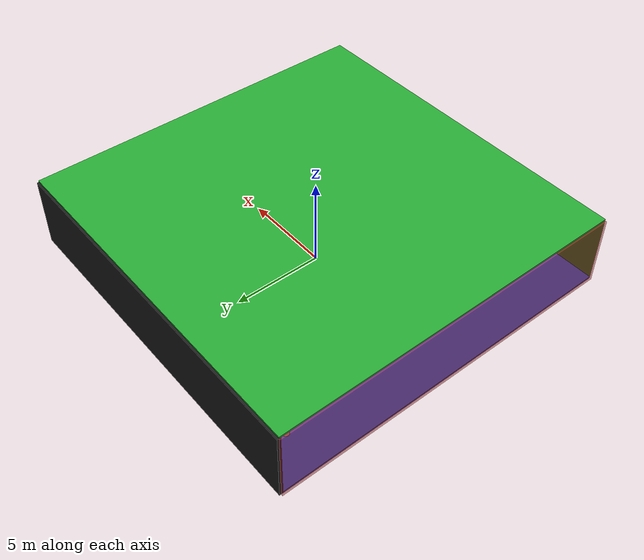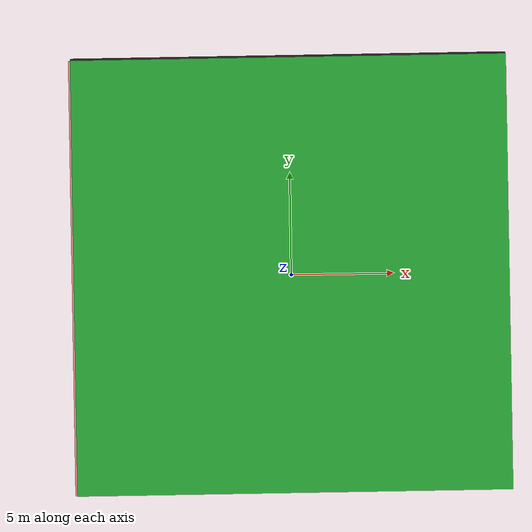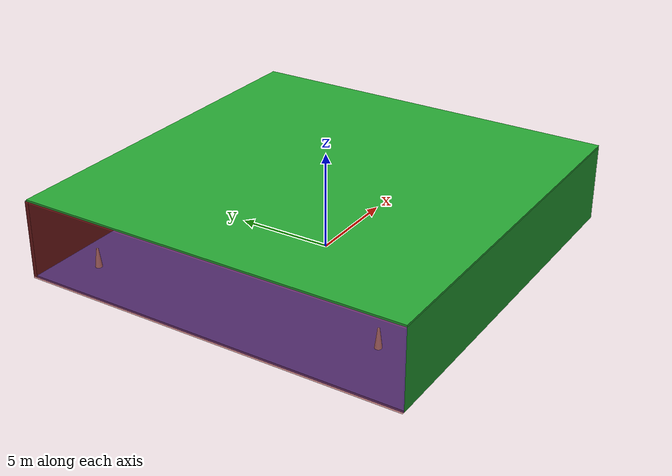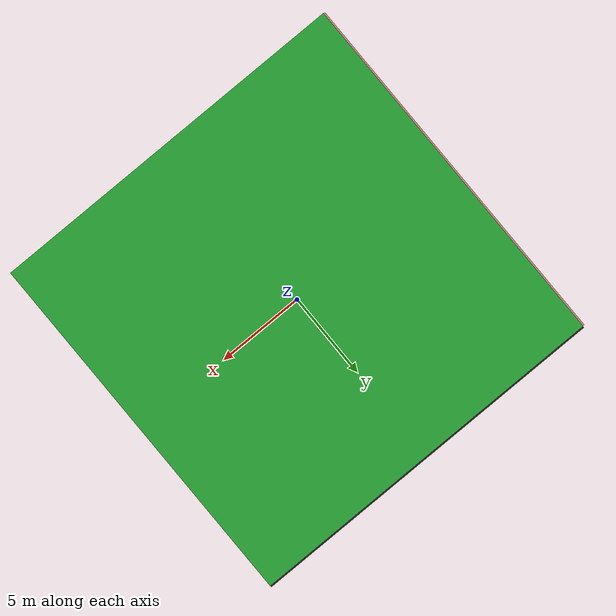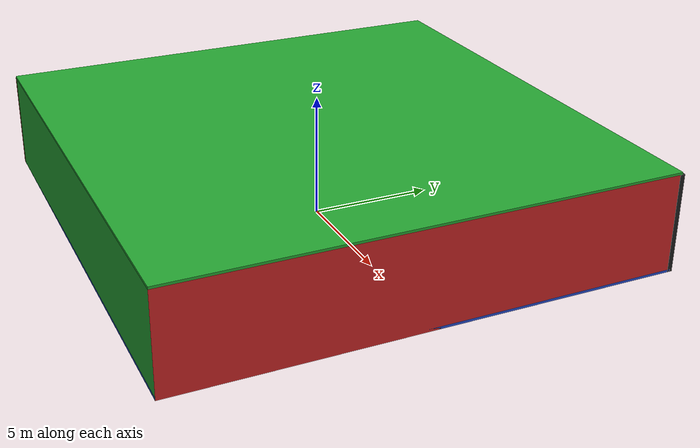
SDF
<sdf version="1.4">
 <world name="default">
  <physics type="ode">
   <max_step_size>0.001</max_step_size>
   <real_time_factor>1</real_time_factor>
   <real_time_update_rate>1000</real_time_update_rate>
   <gravity>0 0 -9.8</gravity>
  </physics>
  <scene><ambient>0.4 0.4 0.4 1</ambient><background>0.7 0.7 0.7 1</background><shadows>1</shadows></scene>
  <model name="Surrounding">
   <static>1</static>
   <link name="Ceiling">
    <collision name="Ceiling_Collision"><geometry><box><size>20 20 0.1</size></box></geometry></collision>
    <visual name="Ceiling_Visual">
     <geometry><box><size>20 20 0.1</size></box></geometry>
     <material>
      <script><uri>file://media/materials/scripts/gazebo.material</uri><name>Gazebo/GreenGlow</name></script>
     </material>
    </visual>
    <pose>0 0 4.05 0 0 0</pose>
   </link>
   <link name="Wall_South">
    <collision name="Wall_South_Collision">
     <geometry><box><size>20 0 4</size></box></geometry>
     <pose>0 0 2 0 -0 0</pose>
    </collision>
    <visual name="Wall_South_Visual">
     <pose>0 0 2 0 -0 0</pose>
     <geometry><box><size>20 0 4</size></box></geometry>
     <material>
      <script><uri>file://media/materials/scripts/gazebo.material</uri><name>Gazebo/GreenGlow</name></script>
     </material>
    </visual>
    <velocity_decay><linear>0</linear><angular>0</angular></velocity_decay>
    <pose>0 -10 0 0 -0 0</pose>
   </link>
   <link name="Wall_East">
    <collision name="Wall_21_Collision">
     <geometry><box><size>20 0 4</size></box></geometry>
     <pose>0 0 2 0 -0 0</pose>
    </collision>
    <visual name="Wall_21_Visual">
     <pose>0 0 2 0 -0 0</pose>
     <geometry><box><size>20 0 4</size></box></geometry>
     <material>
      <script><uri>file://media/materials/scripts/gazebo.material</uri><name>Gazebo/RedGlow</name></script>
     </material>
    </visual>
    <velocity_decay><linear>0</linear><angular>0</angular></velocity_decay>
    <pose>10 0 0 0 -0 1.5708</pose>
   </link>
   <link name="Wall_North">
    <collision name="Wall_22_Collision">
     <geometry><box><size>20 0.2 4</size></box></geometry>
     <pose>0 0 2 0 -0 0</pose>
    </collision>
    <visual name="Wall_22_Visual">
     <pose>0 0 2 0 -0 0</pose>
     <geometry><box><size>20 0.2 4</size></box></geometry>
     <material>
      <script><uri>file://media/materials/scripts/gazebo.material</uri><name>Gazebo/Black</name></script>
     </material>
    </visual>
    <velocity_decay><linear>0</linear><angular>0</angular></velocity_decay>
    <pose>0 10 0 0 -0 0</pose>
   </link>
   <link name="Wall_West">
    <collision name="Wall_23_Collision">
     <geometry><box><size>20 0.2 4</size></box></geometry>
     <pose>0 0 2 0 -0 0</pose>
    </collision>
    <visual name="Wall_23_Visual">
     <pose>0 0 2 0 -0 0</pose>
     <geometry><box><size>20 0.2 4</size></box></geometry>
     <material>
      <script><uri>file://media/materials/scripts/gazebo.material</uri><name>Gazebo/RedTransparent</name></script>
     </material>
    </visual>
    <velocity_decay><linear>0</linear><angular>0</angular></velocity_decay>
    <pose>-10 0 0 0 0 -1.5708</pose>
   </link>
   <link name="Ground_link">
    <collision name="collision">
     <pose>0 0 .05 0 -0 0</pose>
     <geometry><box><size>20 20 0.1</size></box></geometry>
    </collision>
    <visual name="visual">
     <pose>0 0 .05 0 -0 0</pose>
     <geometry><box><size>20 20 0.1</size></box></geometry>
     <material>
      <script><uri>file://media/materials/scripts/gazebo.material</uri><name>Gazebo/Blue</name></script>
     </material>
    </visual>
   </link>
   <static>1</static>
  </model>
  <spherical_coordinates>
   <surface_model>EARTH_WGS84</surface_model>
   <latitude_deg>0</latitude_deg>
   <longitude_deg>0</longitude_deg>
   <elevation>0</elevation>
   <heading_deg>0</heading_deg>
  </spherical_coordinates>
  <light name="lightball_0" type="diffuse">
   <diffuse>0.8 0.8 0.8 1</diffuse>
   <specular>0.2 0.2 0.2 1</specular>
   <attenuation>
    <range>100</range>
    <constant>0.7</constant>
    <linear>0.01</linear>
    <quadratic>0.001</quadratic>
   </attenuation>
   <direction>-0.5 0.1 -0.9</direction>
   <pose>7.39479126602 -9.69240350897 3.88157369786 0 0 0</pose>
  </light>
  <light name="lightball_1" type="diffuse">
   <diffuse>0.8 0.8 0.8 1</diffuse>
   <specular>0.2 0.2 0.2 1</specular>
   <attenuation>
    <range>100</range>
    <constant>0.7</constant>
    <linear>0.01</linear>
    <quadratic>0.001</quadratic>
   </attenuation>
   <direction>-0.5 0.1 -0.9</direction>
   <pose>-7.24387118179 9.04305280362 3.75603436602 0 0 0</pose>
  </light>
  <light name="lightball_2" type="diffuse">
   <diffuse>0.8 0.8 0.8 1</diffuse>
   <specular>0.2 0.2 0.2 1</specular>
   <attenuation>
    <range>100</range>
    <constant>0.7</constant>
    <linear>0.01</linear>
    <quadratic>0.001</quadratic>
   </attenuation>
   <direction>-0.5 0.1 -0.9</direction>
   <pose>-9.8298948886 4.94636788292 2.59738777956 0 0 0</pose>
  </light>
  <light name="lightball_3" type="diffuse">
   <diffuse>0.8 0.8 0.8 1</diffuse>
   <specular>0.2 0.2 0.2 1</specular>
   <attenuation>
    <range>100</range>
    <constant>0.7</constant>
    <linear>0.01</linear>
    <quadratic>0.001</quadratic>
   </attenuation>
   <direction>-0.5 0.1 -0.9</direction>
   <pose>-1.64571427357 -3.48956634465 3.63968741775 0 0 0</pose>
  </light>
  <light name="lightball_4" type="diffuse">
   <diffuse>0.8 0.8 0.8 1</diffuse>
   <specular>0.2 0.2 0.2 1</specular>
   <attenuation>
    <range>100</range>
    <constant>0.7</constant>
    <linear>0.01</linear>
    <quadratic>0.001</quadratic>
   </attenuation>
   <direction>-0.5 0.1 -0.9</direction>
   <pose>1.77949338982 9.0594036223 1.68837420407 0 0 0</pose>
  </light>
  <light name="lightball_5" type="diffuse">
   <diffuse>0.8 0.8 0.8 1</diffuse>
   <specular>0.2 0.2 0.2 1</specular>
   <attenuation>
    <range>100</range>
    <constant>0.7</constant>
    <linear>0.01</linear>
    <quadratic>0.001</quadratic>
   </attenuation>
   <direction>-0.5 0.1 -0.9</direction>
   <pose>-4.12813942759 -8.57998432582 1.36522121307 0 0 0</pose>
  </light>
  <light name="lightball_6" type="diffuse">
   <diffuse>0.8 0.8 0.8 1</diffuse>
   <specular>0.2 0.2 0.2 1</specular>
   <attenuation>
    <range>100</range>
    <constant>0.7</constant>
    <linear>0.01</linear>
    <quadratic>0.001</quadratic>
   </attenuation>
   <direction>-0.5 0.1 -0.9</direction>
   <pose>0.56113858336 0.0724340668092 1.98125616277 0 0 0</pose>
  </light>
  <light name="lightball_7" type="diffuse">
   <diffuse>0.8 0.8 0.8 1</diffuse>
   <specular>0.2 0.2 0.2 1</specular>
   <attenuation>
    <range>100</range>
    <constant>0.7</constant>
    <linear>0.01</linear>
    <quadratic>0.001</quadratic>
   </attenuation>
   <direction>-0.5 0.1 -0.9</direction>
   <pose>6.99371420711 4.67094747633 3.26934491332 0 0 0</pose>
  </light>
  <light name="lightball_8" type="diffuse">
   <diffuse>0.8 0.8 0.8 1</diffuse>
   <specular>0.2 0.2 0.2 1</specular>
   <attenuation>
    <range>100</range>
    <constant>0.7</constant>
    <linear>0.01</linear>
    <quadratic>0.001</quadratic>
   </attenuation>
   <direction>-0.5 0.1 -0.9</direction>
   <pose>0.734364884725 -3.43889504793 3.22408819816 0 0 0</pose>
  </light>
  <light name="lightball_9" type="diffuse">
   <diffuse>0.8 0.8 0.8 1</diffuse>
   <specular>0.2 0.2 0.2 1</specular>
   <attenuation>
    <range>100</range>
    <constant>0.7</constant>
    <linear>0.01</linear>
    <quadratic>0.001</quadratic>
   </attenuation>
   <direction>-0.5 0.1 -0.9</direction>
   <pose>6.47999188708 3.89859006318 2.61597366888 0 0 0</pose>
  </light>
  <light name="lightball_10" type="diffuse">
   <diffuse>0.8 0.8 0.8 1</diffuse>
   <specular>0.2 0.2 0.2 1</specular>
   <attenuation>
    <range>100</range>
    <constant>0.7</constant>
    <linear>0.01</linear>
    <quadratic>0.001</quadratic>
   </attenuation>
   <direction>-0.5 0.1 -0.9</direction>
   <pose>-3.06280831141 -9.47700924529 3.05847524857 0 0 0</pose>
  </light>
  <light name="lightball_11" type="diffuse">
   <diffuse>0.8 0.8 0.8 1</diffuse>
   <specular>0.2 0.2 0.2 1</specular>
   <attenuation>
    <range>100</range>
    <constant>0.7</constant>
    <linear>0.01</linear>
    <quadratic>0.001</quadratic>
   </attenuation>
   <direction>-0.5 0.1 -0.9</direction>
   <pose>6.52498611912 -2.42685545482 1.26536067587 0 0 0</pose>
  </light>
  <include>
   <uri>model://construction_cone</uri>
   <pose>-6.64823740857 -6.86953611263 0 0 0 2.7733068167</pose>
  </include>
  <include>
   <uri>model://construction_cone</uri>
   <pose>-7.75890900913 8.01545375263 0 0 0 0.784195429045</pose>
  </include>
  <include><uri>model://cabinet</uri><pose>3.83057556351 2.69492380805 0 0 0 2.29266115446</pose></include>
  <include><uri>model://table</uri><pose>8.07152999039 -5.62030500456 0 0 0 1.70014194066</pose></include>
  <include><uri>model://cabinet</uri><pose>8.64379670683 1.65413138835 0 0 0 2.41805561027</pose></include>
 </world>
</sdf>

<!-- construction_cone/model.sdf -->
<sdf version="1.5">
  <model name="Construction Cone">
    <link name="link">
      <collision name="collision">
        <geometry>
          <mesh>
            <scale>10 10 10</scale>
            <uri>file://isr-testbed/construction_cone/meshes/construction_cone.dae</uri>
          </mesh>
        </geometry>
      </collision>
      <visual name="visual">
        <geometry>
          <mesh>
            <scale>10 10 10</scale>
            <uri>file://isr-testbed/construction_cone/meshes/construction_cone.dae</uri>
          </mesh>
        </geometry>
      </visual>
    </link>
  </model>
</sdf>

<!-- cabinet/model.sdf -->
<sdf version="1.5">
  <model name="cabinet">
    <static>true</static>
    <link name="cabinet_bottom_plate">
      <inertial>
        <pose>0 0 -1 0 0 0</pose>
        <inertia>
          <ixx>2.050000</ixx>
          <ixy>0</ixy>
          <ixz>0</ixz>
          <iyy>2.050000</iyy>
          <iyz>0</iyz>
          <izz>2.050000</izz>
        </inertia>
        <mass>25.000000</mass>
      </inertial>
      <collision name="cabinet_bottom_plate_geom">
        <pose>0 0 0.010000 0 0 0</pose>
        <geometry>
          <box>
            <size>0.450000 0.450000 0.020000</size>
          </box>
        </geometry>
      </collision>
      <visual name="cabinet_bottom_plate_geom_visual">
        <pose>0 0 0.010000 0 0 0</pose>
        <geometry>
          <box>
            <size>0.450000 0.450000 0.020000</size>
          </box>
        </geometry>
        <material>
          <script>
            <uri>model://media/materials/scripts/gazebo.material</uri>
            <name>Gazebo/Wood</name>
          </script>
        </material>
      </visual>
      <collision name="cabinet_bottom_plate_geom_cabinet_back_plate">
        <pose>0.235000 0 0.510000 0 0 0</pose>
        <geometry>
          <box>
            <size>0.020000 0.450000 1.020000</size>
          </box>
        </geometry>
      </collision>
      <visual name="cabinet_bottom_plate_geom_cabinet_back_plate_visual">
        <pose>0.235000 0 0.510000 0 0 0</pose>
        <geometry>
          <box>
            <size>0.020000 0.450000 1.020000</size>
          </box>
        </geometry>
        <material>
          <script>
            <uri>model://media/materials/scripts/gazebo.material</uri>
            <name>Gazebo/Wood</name>
          </script>
        </material>
      </visual>
      <collision name="cabinet_bottom_plate_geom_cabinet_left_plate">
        <pose>0 0.235000 0.510000 0 0 0</pose>
        <geometry>
          <box>
            <size>0.450000 0.020000 1.020000</size>
          </box>
        </geometry>
      </collision>
      <visual name="cabinet_bottom_plate_geom_cabinet_left_plate_visual">
        <pose>0 0.235000 0.510000 0 0 0</pose>
        <geometry>
          <box>
            <size>0.450000 0.020000 1.020000</size>
          </box>
        </geometry>
        <material>
          <script>
            <uri>model://media/materials/scripts/gazebo.material</uri>
            <name>Gazebo/Wood</name>
          </script>
        </material>
      </visual>
      <collision name="cabinet_bottom_plate_geom_cabinet_middle_plate">
        <pose>0 0 0.510000 0 0 0</pose>
        <geometry>
          <box>
            <size>0.450000 0.450000 0.020000</size>
          </box>
        </geometry>
      </collision>
      <visual name="cabinet_bottom_plate_geom_cabinet_middle_plate_visual">
        <pose>0 0 0.510000 0 0 0</pose>
        <geometry>
          <box>
            <size>0.450000 0.450000 0.020000</size>
          </box>
        </geometry>
        <material>
          <script>
            <uri>model://media/materials/scripts/gazebo.material</uri>
            <name>Gazebo/Wood</name>
          </script>
        </material>
      </visual>
      <collision name="cabinet_bottom_plate_geom_cabinet_right_plate">
        <pose>0 -0.235000 0.510000 0 0 0</pose>
        <geometry>
          <box>
            <size>0.450000 0.020000 1.020000</size>
          </box>
        </geometry>
      </collision>
      <visual name="cabinet_bottom_plate_geom_cabinet_right_plate_visual">
        <pose>0 -0.235000 0.510000 0 0 0</pose>
        <geometry>
          <box>
            <size>0.450000 0.020000 1.020000</size>
          </box>
        </geometry>
        <material>
          <script>
            <uri>model://media/materials/scripts/gazebo.material</uri>
            <name>Gazebo/Wood</name>
          </script>
        </material>
      </visual>
      <collision name="cabinet_bottom_plate_geom_cabinet_top_plate">
        <pose>0 0 1.010000 0 0 0</pose>
        <geometry>
          <box>
            <size>0.450000 0.450000 0.020000</size>
          </box>
        </geometry>
      </collision>
      <visual name="cabinet_bottom_plate_geom_cabinet_top_plate_visual">
        <pose>0 0 1.010000 0 0 0</pose>
        <geometry>
          <box>
            <size>0.450000 0.450000 0.020000</size>
          </box>
        </geometry>
        <material>
          <script>
            <uri>model://media/materials/scripts/gazebo.material</uri>
            <name>Gazebo/Wood</name>
          </script>
        </material>
      </visual>
    </link>
  </model>
</sdf>

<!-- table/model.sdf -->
<sdf version="1.5">
  <model name="table">
    <static>true</static>
    <link name="link">
      <collision name="surface">
        <pose>0 0 1.0 0 0 0</pose>
        <geometry>
          <box>
            <size>1.5 0.8 0.03</size>
          </box>
        </geometry>
        <surface>
          <friction>
            <ode>
              <mu>0.6</mu>
              <mu2>0.6</mu2>
            </ode>
          </friction>
        </surface>
      </collision>
      <visual name="visual1">
        <pose>0 0 1.0 0 0 0</pose>
        <geometry>
          <box>
            <size>1.5 0.8 0.03</size>
          </box>
        </geometry>
        <material>
          <script>
            <uri>model://media/materials/scripts/gazebo.material</uri>
            <name>Gazebo/Wood</name>
          </script>
        </material>
      </visual>
      <collision name="front_left_leg">
        <pose>0.68 0.38 0.5 0 0 0</pose>
        <geometry>
          <cylinder>
            <radius>0.02</radius>
            <length>1.0</length>
          </cylinder>
        </geometry>
      </collision>
      <visual name="front_left_leg">
        <pose>0.68 0.38 0.5 0 0 0</pose>
        <geometry>
          <cylinder>
            <radius>0.02</radius>
            <length>1.0</length>
          </cylinder>
        </geometry>
        <material>
          <script>
            <uri>model://media/materials/scripts/gazebo.material</uri>
            <name>Gazebo/Grey</name>
          </script>
        </material>
      </visual>
      <collision name="front_right_leg">
        <pose>0.68 -0.38 0.5 0 0 0</pose>
        <geometry>
          <cylinder>
            <radius>0.02</radius>
            <length>1.0</length>
          </cylinder>
        </geometry>
      </collision>
      <visual name="front_right_leg">
        <pose>0.68 -0.38 0.5 0 0 0</pose>
        <geometry>
          <cylinder>
            <radius>0.02</radius>
            <length>1.0</length>
          </cylinder>
        </geometry>
        <material>
          <script>
            <uri>model://media/materials/scripts/gazebo.material</uri>
            <name>Gazebo/Grey</name>
          </script>
        </material>
      </visual>
      <collision name="back_right_leg">
        <pose>-0.68 -0.38 0.5 0 0 0</pose>
        <geometry>
          <cylinder>
            <radius>0.02</radius>
            <length>1.0</length>
          </cylinder>
        </geometry>
      </collision>
      <visual name="back_right_leg">
        <pose>-0.68 -0.38 0.5 0 0 0</pose>
        <geometry>
          <cylinder>
            <radius>0.02</radius>
            <length>1.0</length>
          </cylinder>
        </geometry>
        <material>
          <script>
            <uri>model://media/materials/scripts/gazebo.material</uri>
            <name>Gazebo/Grey</name>
          </script>
        </material>
      </visual>
      <collision name="back_left_leg">
        <pose>-0.68 0.38 0.5 0 0 0</pose>
        <geometry>
          <cylinder>
            <radius>0.02</radius>
            <length>1.0</length>
          </cylinder>
        </geometry>
      </collision>
      <visual name="back_left_leg">
        <pose>-0.68 0.38 0.5 0 0 0</pose>
        <geometry>
          <cylinder>
            <radius>0.02</radius>
            <length>1.0</length>
          </cylinder>
        </geometry>
        <material>
          <script>
            <uri>model://media/materials/scripts/gazebo.material</uri>
            <name>Gazebo/Grey</name>
          </script>
        </material>
      </visual>
    </link>
  </model>
</sdf>
